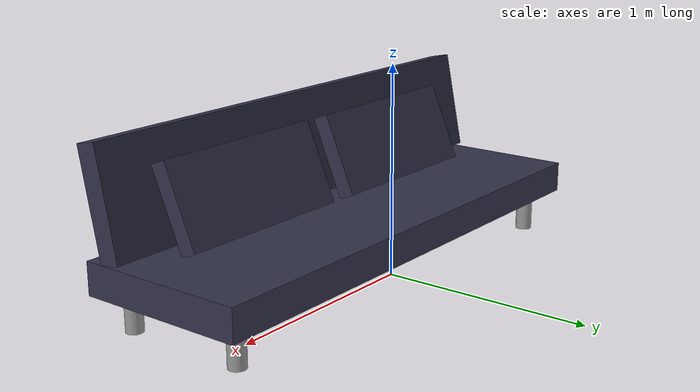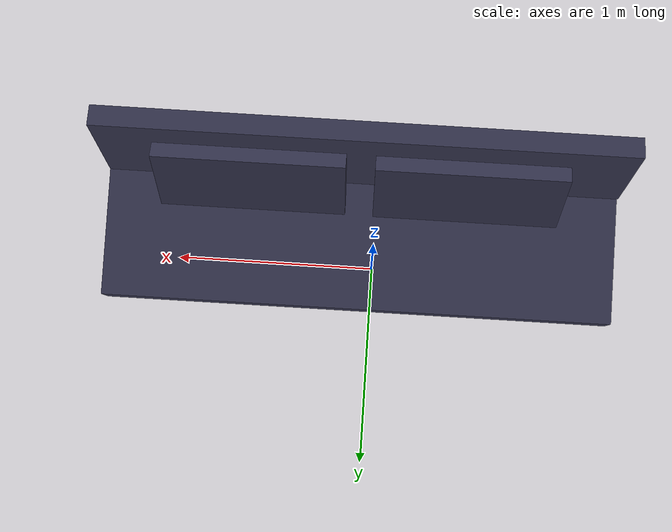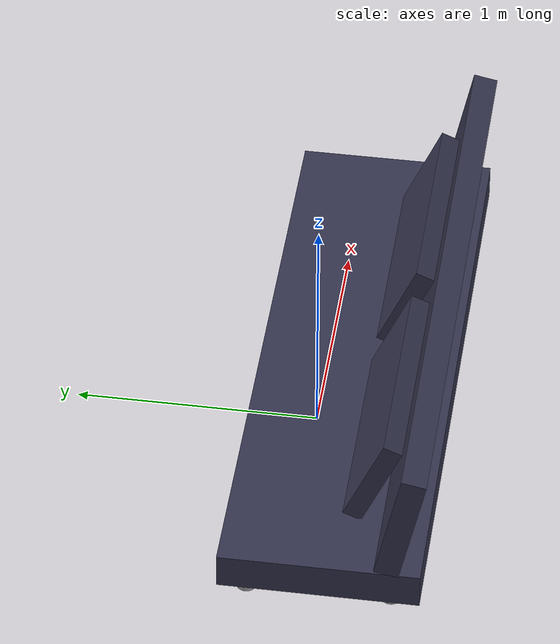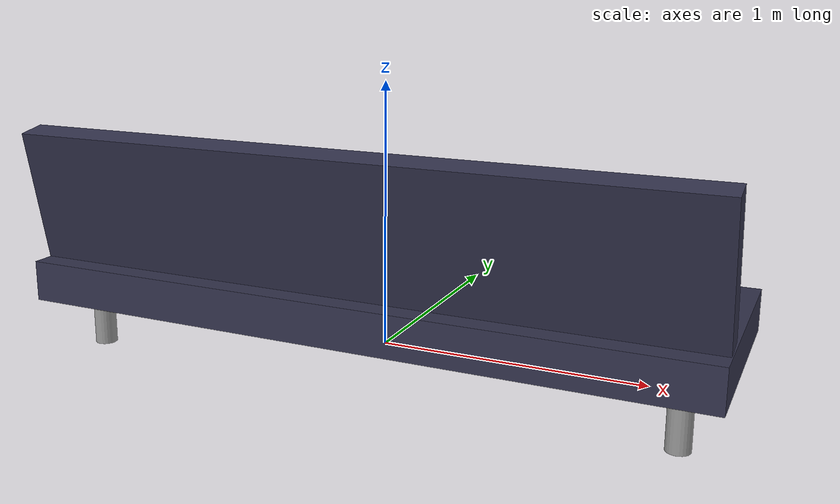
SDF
<?xml version='1.0'?>
<sdf version='1.7'>
  <model name='my_sofa_v2'>
    <link name='link'>
      <inertial>
        <mass>1</mass>
        <inertia>
          <ixx>0.166667</ixx>
          <ixy>0</ixy>
          <ixz>0</ixz>
          <iyy>0.166667</iyy>
          <iyz>0</iyz>
          <izz>0.166667</izz>
        </inertia>
        <pose>0 0 0.25 0 -0 0</pose>
      </inertial>
      <self_collide>0</self_collide>
      <enable_wind>0</enable_wind>
      <kinematic>0</kinematic>
      <pose>0.065484 -0.164497 0 0 -0 0</pose>
      <gravity>1</gravity>
      <visual name='visual'>
        <geometry>
          <box>
            <size>2.5 0.8 0.15</size>
          </box>
        </geometry>
        <material>
          <script>
            <name>Gazebo/Grey</name>
            <uri>file://media/materials/scripts/gazebo.material</uri>
          </script>
          <shader type='pixel'>
            <normal_map>__default__</normal_map>
          </shader>
          <ambient>0.2 0.2 0.3 1</ambient>
          <diffuse>0.2 0.2 0.3 1</diffuse>
          <specular>0.01 0.01 0.01 1</specular>
          <emissive>0.1 0.1 0.1 1</emissive>
        </material>
        <pose>0 0 0.25 0 -0 0</pose>
        <transparency>0</transparency>
        <cast_shadows>1</cast_shadows>
      </visual>
      <collision name='collision'>
        <laser_retro>0</laser_retro>
        <max_contacts>10</max_contacts>
        <pose>0 0 0.25 0 -0 0</pose>
        <geometry>
          <box>
            <size>2.5 0.8 0.15</size>
          </box>
        </geometry>
        <surface>
          <friction>
            <ode>
              <mu>1</mu>
              <mu2>1</mu2>
              <fdir1>0 0 0</fdir1>
              <slip1>0</slip1>
              <slip2>0</slip2>
            </ode>
            <torsional>
              <coefficient>1</coefficient>
              <patch_radius>0</patch_radius>
              <surface_radius>0</surface_radius>
              <use_patch_radius>1</use_patch_radius>
              <ode>
                <slip>0</slip>
              </ode>
            </torsional>
          </friction>
          <bounce>
            <restitution_coefficient>0</restitution_coefficient>
            <threshold>1e+06</threshold>
          </bounce>
          <contact>
            <collide_without_contact>0</collide_without_contact>
            <collide_without_contact_bitmask>1</collide_without_contact_bitmask>
            <collide_bitmask>1</collide_bitmask>
            <ode>
              <soft_cfm>0</soft_cfm>
              <soft_erp>0.2</soft_erp>
              <kp>1e+13</kp>
              <kd>1</kd>
              <max_vel>0.01</max_vel>
              <min_depth>0</min_depth>
            </ode>
            <bullet>
              <split_impulse>1</split_impulse>
              <split_impulse_penetration_threshold>-0.01</split_impulse_penetration_threshold>
              <soft_cfm>0</soft_cfm>
              <soft_erp>0.2</soft_erp>
              <kp>1e+13</kp>
              <kd>1</kd>
            </bullet>
          </contact>
        </surface>
      </collision>
    </link>
    <link name='link_0_clone'>
      <inertial>
        <mass>1</mass>
        <inertia>
          <ixx>0.145833</ixx>
          <ixy>0</ixy>
          <ixz>0</ixz>
          <iyy>0.145833</iyy>
          <iyz>0</iyz>
          <izz>0.125</izz>
        </inertia>
        <pose>0 0 0.5 0 -0 0</pose>
      </inertial>
      <pose>-0.992613 0.144994 -0.4 0 -0 0</pose>
      <gravity>1</gravity>
      <self_collide>0</self_collide>
      <kinematic>0</kinematic>
      <enable_wind>0</enable_wind>
      <visual name='visual'>
        <pose>0 0 0.5 0 -0 0</pose>
        <geometry>
          <cylinder>
            <radius>0.04</radius>
            <length>0.2</length>
          </cylinder>
        </geometry>
        <material>
          <lighting>1</lighting>
          <script>
            <uri>file://media/materials/scripts/gazebo.material</uri>
            <name>Gazebo/Grey</name>
          </script>
          <shader type='pixel'>
            <normal_map>__default__</normal_map>
          </shader>
          <ambient>0.7 0.7 0.7 1</ambient>
          <diffuse>0.7 0.7 0.7 1</diffuse>
          <specular>0.01 0.01 0.01 1</specular>
          <emissive>0 0 0 1</emissive>
        </material>
        <transparency>0</transparency>
        <cast_shadows>1</cast_shadows>
      </visual>
      <collision name='collision'>
        <laser_retro>0</laser_retro>
        <max_contacts>10</max_contacts>
        <pose>0 0 0.5 0 -0 0</pose>
        <geometry>
          <cylinder>
            <radius>0.04</radius>
            <length>0.2</length>
          </cylinder>
        </geometry>
        <surface>
          <friction>
            <ode>
              <mu>1</mu>
              <mu2>1</mu2>
              <fdir1>0 0 0</fdir1>
              <slip1>0</slip1>
              <slip2>0</slip2>
            </ode>
            <torsional>
              <coefficient>1</coefficient>
              <patch_radius>0</patch_radius>
              <surface_radius>0</surface_radius>
              <use_patch_radius>1</use_patch_radius>
              <ode>
                <slip>0</slip>
              </ode>
            </torsional>
          </friction>
          <bounce>
            <restitution_coefficient>0</restitution_coefficient>
            <threshold>1e+06</threshold>
          </bounce>
          <contact>
            <collide_without_contact>0</collide_without_contact>
            <collide_without_contact_bitmask>1</collide_without_contact_bitmask>
            <collide_bitmask>1</collide_bitmask>
            <ode>
              <soft_cfm>0</soft_cfm>
              <soft_erp>0.2</soft_erp>
              <kp>1e+13</kp>
              <kd>1</kd>
              <max_vel>0.01</max_vel>
              <min_depth>0</min_depth>
            </ode>
            <bullet>
              <split_impulse>1</split_impulse>
              <split_impulse_penetration_threshold>-0.01</split_impulse_penetration_threshold>
              <soft_cfm>0</soft_cfm>
              <soft_erp>0.2</soft_erp>
              <kp>1e+13</kp>
              <kd>1</kd>
            </bullet>
          </contact>
        </surface>
      </collision>
    </link>
    <link name='link_0_clone_clone'>
      <inertial>
        <mass>1</mass>
        <inertia>
          <ixx>0.145833</ixx>
          <ixy>0</ixy>
          <ixz>0</ixz>
          <iyy>0.145833</iyy>
          <iyz>0</iyz>
          <izz>0.125</izz>
        </inertia>
        <pose>0 0 0.5 0 -0 0</pose>
      </inertial>
      <pose>1.174 0.117328 -0.4 0 -0 0</pose>
      <gravity>1</gravity>
      <self_collide>0</self_collide>
      <kinematic>0</kinematic>
      <enable_wind>0</enable_wind>
      <visual name='visual'>
        <pose>0 0 0.5 0 -0 0</pose>
        <geometry>
          <cylinder>
            <radius>0.04</radius>
            <length>0.2</length>
          </cylinder>
        </geometry>
        <material>
          <lighting>1</lighting>
          <script>
            <uri>file://media/materials/scripts/gazebo.material</uri>
            <name>Gazebo/Grey</name>
          </script>
          <shader type='pixel'>
            <normal_map>__default__</normal_map>
          </shader>
          <ambient>0.7 0.7 0.7 1</ambient>
          <diffuse>0.7 0.7 0.7 1</diffuse>
          <specular>0.01 0.01 0.01 1</specular>
          <emissive>0 0 0 1</emissive>
        </material>
        <transparency>0</transparency>
        <cast_shadows>1</cast_shadows>
      </visual>
      <collision name='collision'>
        <laser_retro>0</laser_retro>
        <max_contacts>10</max_contacts>
        <pose>0 0 0.5 0 -0 0</pose>
        <geometry>
          <cylinder>
            <radius>0.04</radius>
            <length>0.2</length>
          </cylinder>
        </geometry>
        <surface>
          <friction>
            <ode>
              <mu>1</mu>
              <mu2>1</mu2>
              <fdir1>0 0 0</fdir1>
              <slip1>0</slip1>
              <slip2>0</slip2>
            </ode>
            <torsional>
              <coefficient>1</coefficient>
              <patch_radius>0</patch_radius>
              <surface_radius>0</surface_radius>
              <use_patch_radius>1</use_patch_radius>
              <ode>
                <slip>0</slip>
              </ode>
            </torsional>
          </friction>
          <bounce>
            <restitution_coefficient>0</restitution_coefficient>
            <threshold>1e+06</threshold>
          </bounce>
          <contact>
            <collide_without_contact>0</collide_without_contact>
            <collide_without_contact_bitmask>1</collide_without_contact_bitmask>
            <collide_bitmask>1</collide_bitmask>
            <ode>
              <soft_cfm>0</soft_cfm>
              <soft_erp>0.2</soft_erp>
              <kp>1e+13</kp>
              <kd>1</kd>
              <max_vel>0.01</max_vel>
              <min_depth>0</min_depth>
            </ode>
            <bullet>
              <split_impulse>1</split_impulse>
              <split_impulse_penetration_threshold>-0.01</split_impulse_penetration_threshold>
              <soft_cfm>0</soft_cfm>
              <soft_erp>0.2</soft_erp>
              <kp>1e+13</kp>
              <kd>1</kd>
            </bullet>
          </contact>
        </surface>
      </collision>
    </link>
    <link name='link_0_clone_clone_0'>
      <inertial>
        <mass>1</mass>
        <inertia>
          <ixx>0.145833</ixx>
          <ixy>0</ixy>
          <ixz>0</ixz>
          <iyy>0.145833</iyy>
          <iyz>0</iyz>
          <izz>0.125</izz>
        </inertia>
        <pose>0 0 0.5 0 -0 0</pose>
      </inertial>
      <pose>-0.981901 -0.432294 -0.4 0 -0 0</pose>
      <gravity>1</gravity>
      <self_collide>0</self_collide>
      <kinematic>0</kinematic>
      <enable_wind>0</enable_wind>
      <visual name='visual'>
        <pose>0 0 0.5 0 -0 0</pose>
        <geometry>
          <cylinder>
            <radius>0.04</radius>
            <length>0.2</length>
          </cylinder>
        </geometry>
        <material>
          <lighting>1</lighting>
          <script>
            <uri>file://media/materials/scripts/gazebo.material</uri>
            <name>Gazebo/Grey</name>
          </script>
          <shader type='pixel'>
            <normal_map>__default__</normal_map>
          </shader>
          <ambient>0.7 0.7 0.7 1</ambient>
          <diffuse>0.7 0.7 0.7 1</diffuse>
          <specular>0.01 0.01 0.01 1</specular>
          <emissive>0 0 0 1</emissive>
        </material>
        <transparency>0</transparency>
        <cast_shadows>1</cast_shadows>
      </visual>
      <collision name='collision'>
        <laser_retro>0</laser_retro>
        <max_contacts>10</max_contacts>
        <pose>0 0 0.5 0 -0 0</pose>
        <geometry>
          <cylinder>
            <radius>0.04</radius>
            <length>0.2</length>
          </cylinder>
        </geometry>
        <surface>
          <friction>
            <ode>
              <mu>1</mu>
              <mu2>1</mu2>
              <fdir1>0 0 0</fdir1>
              <slip1>0</slip1>
              <slip2>0</slip2>
            </ode>
            <torsional>
              <coefficient>1</coefficient>
              <patch_radius>0</patch_radius>
              <surface_radius>0</surface_radius>
              <use_patch_radius>1</use_patch_radius>
              <ode>
                <slip>0</slip>
              </ode>
            </torsional>
          </friction>
          <bounce>
            <restitution_coefficient>0</restitution_coefficient>
            <threshold>1e+06</threshold>
          </bounce>
          <contact>
            <collide_without_contact>0</collide_without_contact>
            <collide_without_contact_bitmask>1</collide_without_contact_bitmask>
            <collide_bitmask>1</collide_bitmask>
            <ode>
              <soft_cfm>0</soft_cfm>
              <soft_erp>0.2</soft_erp>
              <kp>1e+13</kp>
              <kd>1</kd>
              <max_vel>0.01</max_vel>
              <min_depth>0</min_depth>
            </ode>
            <bullet>
              <split_impulse>1</split_impulse>
              <split_impulse_penetration_threshold>-0.01</split_impulse_penetration_threshold>
              <soft_cfm>0</soft_cfm>
              <soft_erp>0.2</soft_erp>
              <kp>1e+13</kp>
              <kd>1</kd>
            </bullet>
          </contact>
        </surface>
      </collision>
    </link>
    <link name='link_0_clone_clone_1'>
      <inertial>
        <mass>1</mass>
        <inertia>
          <ixx>0.145833</ixx>
          <ixy>0</ixy>
          <ixz>0</ixz>
          <iyy>0.145833</iyy>
          <iyz>0</iyz>
          <izz>0.125</izz>
        </inertia>
        <pose>0 0 0.5 0 -0 0</pose>
      </inertial>
      <pose>1.178 -0.457589 -0.4 0 -0 0</pose>
      <gravity>1</gravity>
      <self_collide>0</self_collide>
      <kinematic>0</kinematic>
      <enable_wind>0</enable_wind>
      <visual name='visual'>
        <pose>0 0 0.5 0 -0 0</pose>
        <geometry>
          <cylinder>
            <radius>0.04</radius>
            <length>0.2</length>
          </cylinder>
        </geometry>
        <material>
          <lighting>1</lighting>
          <script>
            <uri>file://media/materials/scripts/gazebo.material</uri>
            <name>Gazebo/Grey</name>
          </script>
          <shader type='pixel'>
            <normal_map>__default__</normal_map>
          </shader>
          <ambient>0.7 0.7 0.7 1</ambient>
          <diffuse>0.7 0.7 0.7 1</diffuse>
          <specular>0.01 0.01 0.01 1</specular>
          <emissive>0 0 0 1</emissive>
        </material>
        <transparency>0</transparency>
        <cast_shadows>1</cast_shadows>
      </visual>
      <collision name='collision'>
        <laser_retro>0</laser_retro>
        <max_contacts>10</max_contacts>
        <pose>0 0 0.5 0 -0 0</pose>
        <geometry>
          <cylinder>
            <radius>0.04</radius>
            <length>0.2</length>
          </cylinder>
        </geometry>
        <surface>
          <friction>
            <ode>
              <mu>1</mu>
              <mu2>1</mu2>
              <fdir1>0 0 0</fdir1>
              <slip1>0</slip1>
              <slip2>0</slip2>
            </ode>
            <torsional>
              <coefficient>1</coefficient>
              <patch_radius>0</patch_radius>
              <surface_radius>0</surface_radius>
              <use_patch_radius>1</use_patch_radius>
              <ode>
                <slip>0</slip>
              </ode>
            </torsional>
          </friction>
          <bounce>
            <restitution_coefficient>0</restitution_coefficient>
            <threshold>1e+06</threshold>
          </bounce>
          <contact>
            <collide_without_contact>0</collide_without_contact>
            <collide_without_contact_bitmask>1</collide_without_contact_bitmask>
            <collide_bitmask>1</collide_bitmask>
            <ode>
              <soft_cfm>0</soft_cfm>
              <soft_erp>0.2</soft_erp>
              <kp>1e+13</kp>
              <kd>1</kd>
              <max_vel>0.01</max_vel>
              <min_depth>0</min_depth>
            </ode>
            <bullet>
              <split_impulse>1</split_impulse>
              <split_impulse_penetration_threshold>-0.01</split_impulse_penetration_threshold>
              <soft_cfm>0</soft_cfm>
              <soft_erp>0.2</soft_erp>
              <kp>1e+13</kp>
              <kd>1</kd>
            </bullet>
          </contact>
        </surface>
      </collision>
    </link>
    <link name='link_1'>
      <inertial>
        <mass>1</mass>
        <inertia>
          <ixx>0.166667</ixx>
          <ixy>0</ixy>
          <ixz>0</ixz>
          <iyy>0.166667</iyy>
          <iyz>0</iyz>
          <izz>0.166667</izz>
        </inertia>
        <pose>0 0 0.5 0 -0 0</pose>
      </inertial>
      <pose>0.062037 -0.480098 0.074743 0 -0 0</pose>
      <gravity>1</gravity>
      <self_collide>0</self_collide>
      <kinematic>0</kinematic>
      <enable_wind>0</enable_wind>
      <visual name='visual'>
        <pose>0 0 0.5 0.2 -0 0</pose>
        <geometry>
          <box>
            <size>2.5 0.1 0.5</size>
          </box>
        </geometry>
        <material>
          <lighting>1</lighting>
          <script>
            <uri>file://media/materials/scripts/gazebo.material</uri>
            <name>Gazebo/Grey</name>
          </script>
          <shader type='pixel'>
            <normal_map>__default__</normal_map>
          </shader>
          <ambient>0.2 0.2 0.3 1</ambient>
          <diffuse>0.2 0.2 0.3 1</diffuse>
          <specular>0.01 0.01 0.01 1</specular>
          <emissive>0.1 0.1 0.1 1</emissive>
        </material>
        <transparency>0</transparency>
        <cast_shadows>1</cast_shadows>
      </visual>
      <collision name='collision'>
        <laser_retro>0</laser_retro>
        <max_contacts>10</max_contacts>
        <pose>0 0 0.5 0.2 -0 0</pose>
        <geometry>
          <box>
            <size>2.5 0.1 0.5</size>
          </box>
        </geometry>
        <surface>
          <friction>
            <ode>
              <mu>1</mu>
              <mu2>1</mu2>
              <fdir1>0 0 0</fdir1>
              <slip1>0</slip1>
              <slip2>0</slip2>
            </ode>
            <torsional>
              <coefficient>1</coefficient>
              <patch_radius>0</patch_radius>
              <surface_radius>0</surface_radius>
              <use_patch_radius>1</use_patch_radius>
              <ode>
                <slip>0</slip>
              </ode>
            </torsional>
          </friction>
          <bounce>
            <restitution_coefficient>0</restitution_coefficient>
            <threshold>1e+06</threshold>
          </bounce>
          <contact>
            <collide_without_contact>0</collide_without_contact>
            <collide_without_contact_bitmask>1</collide_without_contact_bitmask>
            <collide_bitmask>1</collide_bitmask>
            <ode>
              <soft_cfm>0</soft_cfm>
              <soft_erp>0.2</soft_erp>
              <kp>1e+13</kp>
              <kd>1</kd>
              <max_vel>0.01</max_vel>
              <min_depth>0</min_depth>
            </ode>
            <bullet>
              <split_impulse>1</split_impulse>
              <split_impulse_penetration_threshold>-0.01</split_impulse_penetration_threshold>
              <soft_cfm>0</soft_cfm>
              <soft_erp>0.2</soft_erp>
              <kp>1e+13</kp>
              <kd>1</kd>
            </bullet>
          </contact>
        </surface>
      </collision>
    </link>
    <link name='link_2'>
      <inertial>
        <mass>1</mass>
        <inertia>
          <ixx>0.166667</ixx>
          <ixy>0</ixy>
          <ixz>0</ixz>
          <iyy>0.166667</iyy>
          <iyz>0</iyz>
          <izz>0.166667</izz>
        </inertia>
        <pose>0 0 0.5 0 -0 0</pose>
      </inertial>
      <pose>0.596829 -0.338066 0.017621 0 -0 0</pose>
      <gravity>1</gravity>
      <self_collide>0</self_collide>
      <kinematic>0</kinematic>
      <enable_wind>0</enable_wind>
      <visual name='visual'>
        <pose>0 0 0.5 0.4 -0 0</pose>
        <geometry>
          <box>
            <size>0.9 0.08 0.4</size>
          </box>
        </geometry>
        <material>
          <lighting>1</lighting>
          <script>
            <uri>file://media/materials/scripts/gazebo.material</uri>
            <name>Gazebo/Grey</name>
          </script>
          <shader type='pixel'>
            <normal_map>__default__</normal_map>
          </shader>
          <ambient>0.2 0.2 0.3 1</ambient>
          <diffuse>0.2 0.2 0.3 1</diffuse>
          <specular>0.01 0.01 0.01 1</specular>
          <emissive>0.1 0.1 0.1 1</emissive>
        </material>
        <transparency>0</transparency>
        <cast_shadows>1</cast_shadows>
      </visual>
      <collision name='collision'>
        <laser_retro>0</laser_retro>
        <max_contacts>10</max_contacts>
        <pose>0 0 0.5 0.4 -0 0</pose>
        <geometry>
          <box>
            <size>0.9 0.08 0.4</size>
          </box>
        </geometry>
        <surface>
          <friction>
            <ode>
              <mu>1</mu>
              <mu2>1</mu2>
              <fdir1>0 0 0</fdir1>
              <slip1>0</slip1>
              <slip2>0</slip2>
            </ode>
            <torsional>
              <coefficient>1</coefficient>
              <patch_radius>0</patch_radius>
              <surface_radius>0</surface_radius>
              <use_patch_radius>1</use_patch_radius>
              <ode>
                <slip>0</slip>
              </ode>
            </torsional>
          </friction>
          <bounce>
            <restitution_coefficient>0</restitution_coefficient>
            <threshold>1e+06</threshold>
          </bounce>
          <contact>
            <collide_without_contact>0</collide_without_contact>
            <collide_without_contact_bitmask>1</collide_without_contact_bitmask>
            <collide_bitmask>1</collide_bitmask>
            <ode>
              <soft_cfm>0</soft_cfm>
              <soft_erp>0.2</soft_erp>
              <kp>1e+13</kp>
              <kd>1</kd>
              <max_vel>0.01</max_vel>
              <min_depth>0</min_depth>
            </ode>
            <bullet>
              <split_impulse>1</split_impulse>
              <split_impulse_penetration_threshold>-0.01</split_impulse_penetration_threshold>
              <soft_cfm>0</soft_cfm>
              <soft_erp>0.2</soft_erp>
              <kp>1e+13</kp>
              <kd>1</kd>
            </bullet>
          </contact>
        </surface>
      </collision>
    </link>
    <link name='link_2_clone'>
      <inertial>
        <mass>1</mass>
        <inertia>
          <ixx>0.166667</ixx>
          <ixy>0</ixy>
          <ixz>0</ixz>
          <iyy>0.166667</iyy>
          <iyz>0</iyz>
          <izz>0.166667</izz>
        </inertia>
        <pose>0 0 0.5 0 -0 0</pose>
      </inertial>
      <pose>-0.439001 -0.335804 0.017621 0 -0 0</pose>
      <gravity>1</gravity>
      <self_collide>0</self_collide>
      <kinematic>0</kinematic>
      <enable_wind>0</enable_wind>
      <visual name='visual'>
        <pose>0 0 0.5 0.4 -0 0</pose>
        <geometry>
          <box>
            <size>0.9 0.08 0.4</size>
          </box>
        </geometry>
        <material>
          <lighting>1</lighting>
          <script>
            <uri>file://media/materials/scripts/gazebo.material</uri>
            <name>Gazebo/Grey</name>
          </script>
          <shader type='pixel'>
            <normal_map>__default__</normal_map>
          </shader>
          <ambient>0.2 0.2 0.3 1</ambient>
          <diffuse>0.2 0.2 0.3 1</diffuse>
          <specular>0.01 0.01 0.01 1</specular>
          <emissive>0.1 0.1 0.1 1</emissive>
        </material>
        <transparency>0</transparency>
        <cast_shadows>1</cast_shadows>
      </visual>
      <collision name='collision'>
        <laser_retro>0</laser_retro>
        <max_contacts>10</max_contacts>
        <pose>0 0 0.5 0.4 -0 0</pose>
        <geometry>
          <box>
            <size>0.9 0.08 0.4</size>
          </box>
        </geometry>
        <surface>
          <friction>
            <ode>
              <mu>1</mu>
              <mu2>1</mu2>
              <fdir1>0 0 0</fdir1>
              <slip1>0</slip1>
              <slip2>0</slip2>
            </ode>
            <torsional>
              <coefficient>1</coefficient>
              <patch_radius>0</patch_radius>
              <surface_radius>0</surface_radius>
              <use_patch_radius>1</use_patch_radius>
              <ode>
                <slip>0</slip>
              </ode>
            </torsional>
          </friction>
          <bounce>
            <restitution_coefficient>0</restitution_coefficient>
            <threshold>1e+06</threshold>
          </bounce>
          <contact>
            <collide_without_contact>0</collide_without_contact>
            <collide_without_contact_bitmask>1</collide_without_contact_bitmask>
            <collide_bitmask>1</collide_bitmask>
            <ode>
              <soft_cfm>0</soft_cfm>
              <soft_erp>0.2</soft_erp>
              <kp>1e+13</kp>
              <kd>1</kd>
              <max_vel>0.01</max_vel>
              <min_depth>0</min_depth>
            </ode>
            <bullet>
              <split_impulse>1</split_impulse>
              <split_impulse_penetration_threshold>-0.01</split_impulse_penetration_threshold>
              <soft_cfm>0</soft_cfm>
              <soft_erp>0.2</soft_erp>
              <kp>1e+13</kp>
              <kd>1</kd>
            </bullet>
          </contact>
        </surface>
      </collision>
    </link>
    <static>1</static>
    <allow_auto_disable>1</allow_auto_disable>
  </model>
</sdf>
